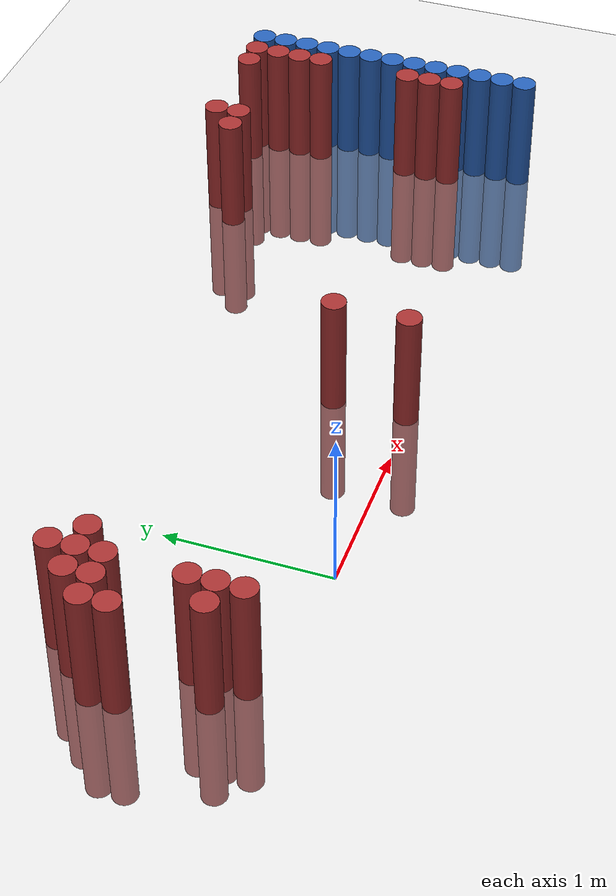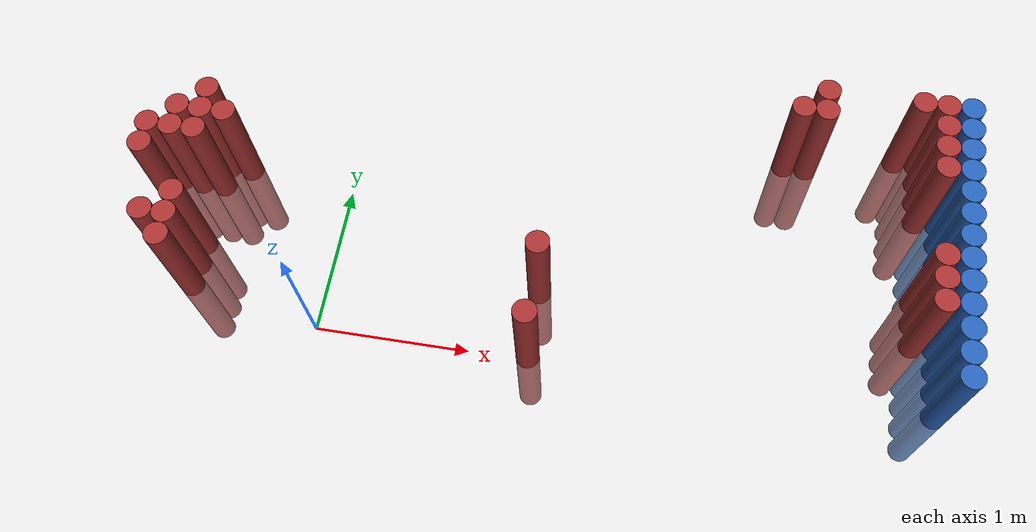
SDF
<sdf version="1.6">
 <world name="default">
  <model name="ground_plane">
   <static>1</static>
   <link name="link">
    <collision name="collision">
     <geometry><plane><normal>0 0 1</normal><size>100 100</size></plane></geometry>
     <surface><friction><ode><mu>100</mu><mu2>50</mu2></ode></friction></surface>
    </collision>
    <visual name="visual">
     <cast_shadows>0</cast_shadows>
     <geometry><plane><normal>0 0 1</normal><size>100 100</size></plane></geometry>
     <material>
      <script><uri>file://media/materials/scripts/gazebo.material</uri><name>Gazebo/Grey</name></script>
     </material>
    </visual>
   </link>
  </model>
  <model name="unit_cylinder_116">
   <static>1</static>
   <pose>3.925000 0.175000 0.000000 0.000000 0.000000 0.000000</pose>
   <link name="link">
    <inertial>
     <mass>1</mass>
     <inertia><ixx>0.145833</ixx><ixy>0</ixy><ixz>0</ixz><iyy>0.145833</iyy><iyz>0</iyz><izz>0.125</izz></inertia>
    </inertial>
    <collision name="collision">
     <geometry><cylinder><radius>0.075000</radius><length>1.5</length></cylinder></geometry>
    </collision>
    <visual name="visual">
     <geometry><cylinder><radius>0.075000</radius><length>1.5</length></cylinder></geometry>
     <material>
      <ambient>0.152000 0.379000 0.720000 1</ambient>
      <diffuse>0.152000 0.379000 0.720000 1</diffuse>
     </material>
     <material>
      <script><name>Gazebo/Grey</name><uri>file://media/materials/scripts/gazebo.material</uri></script>
     </material>
    </visual>
   </link>
  </model>
  <model name="unit_cylinder_118">
   <static>1</static>
   <pose>3.925000 0.325000 0.000000 0.000000 0.000000 0.000000</pose>
   <link name="link">
    <inertial>
     <mass>1</mass>
     <inertia><ixx>0.145833</ixx><ixy>0</ixy><ixz>0</ixz><iyy>0.145833</iyy><iyz>0</iyz><izz>0.125</izz></inertia>
    </inertial>
    <collision name="collision">
     <geometry><cylinder><radius>0.075000</radius><length>1.5</length></cylinder></geometry>
    </collision>
    <visual name="visual">
     <geometry><cylinder><radius>0.075000</radius><length>1.5</length></cylinder></geometry>
     <material>
      <ambient>0.152000 0.379000 0.720000 1</ambient>
      <diffuse>0.152000 0.379000 0.720000 1</diffuse>
     </material>
     <material>
      <script><name>Gazebo/Grey</name><uri>file://media/materials/scripts/gazebo.material</uri></script>
     </material>
    </visual>
   </link>
  </model>
  <model name="unit_cylinder_120">
   <static>1</static>
   <pose>3.925000 0.475000 0.000000 0.000000 0.000000 0.000000</pose>
   <link name="link">
    <inertial>
     <mass>1</mass>
     <inertia><ixx>0.145833</ixx><ixy>0</ixy><ixz>0</ixz><iyy>0.145833</iyy><iyz>0</iyz><izz>0.125</izz></inertia>
    </inertial>
    <collision name="collision">
     <geometry><cylinder><radius>0.075000</radius><length>1.5</length></cylinder></geometry>
    </collision>
    <visual name="visual">
     <geometry><cylinder><radius>0.075000</radius><length>1.5</length></cylinder></geometry>
     <material>
      <ambient>0.152000 0.379000 0.720000 1</ambient>
      <diffuse>0.152000 0.379000 0.720000 1</diffuse>
     </material>
     <material>
      <script><name>Gazebo/Grey</name><uri>file://media/materials/scripts/gazebo.material</uri></script>
     </material>
    </visual>
   </link>
  </model>
  <model name="unit_cylinder_122">
   <static>1</static>
   <pose>3.925000 0.625000 0.000000 0.000000 0.000000 0.000000</pose>
   <link name="link">
    <inertial>
     <mass>1</mass>
     <inertia><ixx>0.145833</ixx><ixy>0</ixy><ixz>0</ixz><iyy>0.145833</iyy><iyz>0</iyz><izz>0.125</izz></inertia>
    </inertial>
    <collision name="collision">
     <geometry><cylinder><radius>0.075000</radius><length>1.5</length></cylinder></geometry>
    </collision>
    <visual name="visual">
     <geometry><cylinder><radius>0.075000</radius><length>1.5</length></cylinder></geometry>
     <material>
      <ambient>0.152000 0.379000 0.720000 1</ambient>
      <diffuse>0.152000 0.379000 0.720000 1</diffuse>
     </material>
     <material>
      <script><name>Gazebo/Grey</name><uri>file://media/materials/scripts/gazebo.material</uri></script>
     </material>
    </visual>
   </link>
  </model>
  <model name="unit_cylinder_124">
   <static>1</static>
   <pose>3.925000 0.775000 0.000000 0.000000 0.000000 0.000000</pose>
   <link name="link">
    <inertial>
     <mass>1</mass>
     <inertia><ixx>0.145833</ixx><ixy>0</ixy><ixz>0</ixz><iyy>0.145833</iyy><iyz>0</iyz><izz>0.125</izz></inertia>
    </inertial>
    <collision name="collision">
     <geometry><cylinder><radius>0.075000</radius><length>1.5</length></cylinder></geometry>
    </collision>
    <visual name="visual">
     <geometry><cylinder><radius>0.075000</radius><length>1.5</length></cylinder></geometry>
     <material>
      <ambient>0.152000 0.379000 0.720000 1</ambient>
      <diffuse>0.152000 0.379000 0.720000 1</diffuse>
     </material>
     <material>
      <script><name>Gazebo/Grey</name><uri>file://media/materials/scripts/gazebo.material</uri></script>
     </material>
    </visual>
   </link>
  </model>
  <model name="unit_cylinder_126">
   <static>1</static>
   <pose>3.925000 0.925000 0.000000 0.000000 0.000000 0.000000</pose>
   <link name="link">
    <inertial>
     <mass>1</mass>
     <inertia><ixx>0.145833</ixx><ixy>0</ixy><ixz>0</ixz><iyy>0.145833</iyy><iyz>0</iyz><izz>0.125</izz></inertia>
    </inertial>
    <collision name="collision">
     <geometry><cylinder><radius>0.075000</radius><length>1.5</length></cylinder></geometry>
    </collision>
    <visual name="visual">
     <geometry><cylinder><radius>0.075000</radius><length>1.5</length></cylinder></geometry>
     <material>
      <ambient>0.152000 0.379000 0.720000 1</ambient>
      <diffuse>0.152000 0.379000 0.720000 1</diffuse>
     </material>
     <material>
      <script><name>Gazebo/Grey</name><uri>file://media/materials/scripts/gazebo.material</uri></script>
     </material>
    </visual>
   </link>
  </model>
  <model name="unit_cylinder_128">
   <static>1</static>
   <pose>3.925000 1.075000 0.000000 0.000000 0.000000 0.000000</pose>
   <link name="link">
    <inertial>
     <mass>1</mass>
     <inertia><ixx>0.145833</ixx><ixy>0</ixy><ixz>0</ixz><iyy>0.145833</iyy><iyz>0</iyz><izz>0.125</izz></inertia>
    </inertial>
    <collision name="collision">
     <geometry><cylinder><radius>0.075000</radius><length>1.5</length></cylinder></geometry>
    </collision>
    <visual name="visual">
     <geometry><cylinder><radius>0.075000</radius><length>1.5</length></cylinder></geometry>
     <material>
      <ambient>0.152000 0.379000 0.720000 1</ambient>
      <diffuse>0.152000 0.379000 0.720000 1</diffuse>
     </material>
     <material>
      <script><name>Gazebo/Grey</name><uri>file://media/materials/scripts/gazebo.material</uri></script>
     </material>
    </visual>
   </link>
  </model>
  <model name="unit_cylinder_130">
   <static>1</static>
   <pose>3.925000 1.225000 0.000000 0.000000 0.000000 0.000000</pose>
   <link name="link">
    <inertial>
     <mass>1</mass>
     <inertia><ixx>0.145833</ixx><ixy>0</ixy><ixz>0</ixz><iyy>0.145833</iyy><iyz>0</iyz><izz>0.125</izz></inertia>
    </inertial>
    <collision name="collision">
     <geometry><cylinder><radius>0.075000</radius><length>1.5</length></cylinder></geometry>
    </collision>
    <visual name="visual">
     <geometry><cylinder><radius>0.075000</radius><length>1.5</length></cylinder></geometry>
     <material>
      <ambient>0.152000 0.379000 0.720000 1</ambient>
      <diffuse>0.152000 0.379000 0.720000 1</diffuse>
     </material>
     <material>
      <script><name>Gazebo/Grey</name><uri>file://media/materials/scripts/gazebo.material</uri></script>
     </material>
    </visual>
   </link>
  </model>
  <model name="unit_cylinder_132">
   <static>1</static>
   <pose>3.925000 1.375000 0.000000 0.000000 0.000000 0.000000</pose>
   <link name="link">
    <inertial>
     <mass>1</mass>
     <inertia><ixx>0.145833</ixx><ixy>0</ixy><ixz>0</ixz><iyy>0.145833</iyy><iyz>0</iyz><izz>0.125</izz></inertia>
    </inertial>
    <collision name="collision">
     <geometry><cylinder><radius>0.075000</radius><length>1.5</length></cylinder></geometry>
    </collision>
    <visual name="visual">
     <geometry><cylinder><radius>0.075000</radius><length>1.5</length></cylinder></geometry>
     <material>
      <ambient>0.152000 0.379000 0.720000 1</ambient>
      <diffuse>0.152000 0.379000 0.720000 1</diffuse>
     </material>
     <material>
      <script><name>Gazebo/Grey</name><uri>file://media/materials/scripts/gazebo.material</uri></script>
     </material>
    </visual>
   </link>
  </model>
  <model name="unit_cylinder_134">
   <static>1</static>
   <pose>3.925000 1.525000 0.000000 0.000000 0.000000 0.000000</pose>
   <link name="link">
    <inertial>
     <mass>1</mass>
     <inertia><ixx>0.145833</ixx><ixy>0</ixy><ixz>0</ixz><iyy>0.145833</iyy><iyz>0</iyz><izz>0.125</izz></inertia>
    </inertial>
    <collision name="collision">
     <geometry><cylinder><radius>0.075000</radius><length>1.5</length></cylinder></geometry>
    </collision>
    <visual name="visual">
     <geometry><cylinder><radius>0.075000</radius><length>1.5</length></cylinder></geometry>
     <material>
      <ambient>0.152000 0.379000 0.720000 1</ambient>
      <diffuse>0.152000 0.379000 0.720000 1</diffuse>
     </material>
     <material>
      <script><name>Gazebo/Grey</name><uri>file://media/materials/scripts/gazebo.material</uri></script>
     </material>
    </visual>
   </link>
  </model>
  <model name="unit_cylinder_136">
   <static>1</static>
   <pose>3.925000 1.675000 0.000000 0.000000 0.000000 0.000000</pose>
   <link name="link">
    <inertial>
     <mass>1</mass>
     <inertia><ixx>0.145833</ixx><ixy>0</ixy><ixz>0</ixz><iyy>0.145833</iyy><iyz>0</iyz><izz>0.125</izz></inertia>
    </inertial>
    <collision name="collision">
     <geometry><cylinder><radius>0.075000</radius><length>1.5</length></cylinder></geometry>
    </collision>
    <visual name="visual">
     <geometry><cylinder><radius>0.075000</radius><length>1.5</length></cylinder></geometry>
     <material>
      <ambient>0.152000 0.379000 0.720000 1</ambient>
      <diffuse>0.152000 0.379000 0.720000 1</diffuse>
     </material>
     <material>
      <script><name>Gazebo/Grey</name><uri>file://media/materials/scripts/gazebo.material</uri></script>
     </material>
    </visual>
   </link>
  </model>
  <model name="unit_cylinder_138">
   <static>1</static>
   <pose>3.925000 1.825000 0.000000 0.000000 0.000000 0.000000</pose>
   <link name="link">
    <inertial>
     <mass>1</mass>
     <inertia><ixx>0.145833</ixx><ixy>0</ixy><ixz>0</ixz><iyy>0.145833</iyy><iyz>0</iyz><izz>0.125</izz></inertia>
    </inertial>
    <collision name="collision">
     <geometry><cylinder><radius>0.075000</radius><length>1.5</length></cylinder></geometry>
    </collision>
    <visual name="visual">
     <geometry><cylinder><radius>0.075000</radius><length>1.5</length></cylinder></geometry>
     <material>
      <ambient>0.152000 0.379000 0.720000 1</ambient>
      <diffuse>0.152000 0.379000 0.720000 1</diffuse>
     </material>
     <material>
      <script><name>Gazebo/Grey</name><uri>file://media/materials/scripts/gazebo.material</uri></script>
     </material>
    </visual>
   </link>
  </model>
  <model name="unit_cylinder_296">
   <static>1</static>
   <pose>-1.175000 0.775000 0.000000 0.000000 0.000000 0.000000</pose>
   <link name="link">
    <inertial>
     <mass>1</mass>
     <inertia><ixx>0.145833</ixx><ixy>0</ixy><ixz>0</ixz><iyy>0.145833</iyy><iyz>0</iyz><izz>0.125</izz></inertia>
    </inertial>
    <collision name="collision">
     <geometry><cylinder><radius>0.075000</radius><length>1.5</length></cylinder></geometry>
    </collision>
    <visual name="visual">
     <geometry><cylinder><radius>0.075000</radius><length>1.5</length></cylinder></geometry>
     <material>
      <ambient>0.648000 0.192000 0.192000 1</ambient>
      <diffuse>0.648000 0.192000 0.192000 1</diffuse>
     </material>
     <material>
      <script><name>Gazebo/Grey</name><uri>file://media/materials/scripts/gazebo.material</uri></script>
     </material>
    </visual>
   </link>
  </model>
  <model name="unit_cylinder_297">
   <static>1</static>
   <pose>-1.175000 0.925000 0.000000 0.000000 0.000000 0.000000</pose>
   <link name="link">
    <inertial>
     <mass>1</mass>
     <inertia><ixx>0.145833</ixx><ixy>0</ixy><ixz>0</ixz><iyy>0.145833</iyy><iyz>0</iyz><izz>0.125</izz></inertia>
    </inertial>
    <collision name="collision">
     <geometry><cylinder><radius>0.075000</radius><length>1.5</length></cylinder></geometry>
    </collision>
    <visual name="visual">
     <geometry><cylinder><radius>0.075000</radius><length>1.5</length></cylinder></geometry>
     <material>
      <ambient>0.648000 0.192000 0.192000 1</ambient>
      <diffuse>0.648000 0.192000 0.192000 1</diffuse>
     </material>
     <material>
      <script><name>Gazebo/Grey</name><uri>file://media/materials/scripts/gazebo.material</uri></script>
     </material>
    </visual>
   </link>
  </model>
  <model name="unit_cylinder_298">
   <static>1</static>
   <pose>-1.025000 0.325000 0.000000 0.000000 0.000000 0.000000</pose>
   <link name="link">
    <inertial>
     <mass>1</mass>
     <inertia><ixx>0.145833</ixx><ixy>0</ixy><ixz>0</ixz><iyy>0.145833</iyy><iyz>0</iyz><izz>0.125</izz></inertia>
    </inertial>
    <collision name="collision">
     <geometry><cylinder><radius>0.075000</radius><length>1.5</length></cylinder></geometry>
    </collision>
    <visual name="visual">
     <geometry><cylinder><radius>0.075000</radius><length>1.5</length></cylinder></geometry>
     <material>
      <ambient>0.648000 0.192000 0.192000 1</ambient>
      <diffuse>0.648000 0.192000 0.192000 1</diffuse>
     </material>
     <material>
      <script><name>Gazebo/Grey</name><uri>file://media/materials/scripts/gazebo.material</uri></script>
     </material>
    </visual>
   </link>
  </model>
  <model name="unit_cylinder_299">
   <static>1</static>
   <pose>-1.025000 0.925000 0.000000 0.000000 0.000000 0.000000</pose>
   <link name="link">
    <inertial>
     <mass>1</mass>
     <inertia><ixx>0.145833</ixx><ixy>0</ixy><ixz>0</ixz><iyy>0.145833</iyy><iyz>0</iyz><izz>0.125</izz></inertia>
    </inertial>
    <collision name="collision">
     <geometry><cylinder><radius>0.075000</radius><length>1.5</length></cylinder></geometry>
    </collision>
    <visual name="visual">
     <geometry><cylinder><radius>0.075000</radius><length>1.5</length></cylinder></geometry>
     <material>
      <ambient>0.648000 0.192000 0.192000 1</ambient>
      <diffuse>0.648000 0.192000 0.192000 1</diffuse>
     </material>
     <material>
      <script><name>Gazebo/Grey</name><uri>file://media/materials/scripts/gazebo.material</uri></script>
     </material>
    </visual>
   </link>
  </model>
  <model name="unit_cylinder_300">
   <static>1</static>
   <pose>-1.025000 1.075000 0.000000 0.000000 0.000000 0.000000</pose>
   <link name="link">
    <inertial>
     <mass>1</mass>
     <inertia><ixx>0.145833</ixx><ixy>0</ixy><ixz>0</ixz><iyy>0.145833</iyy><iyz>0</iyz><izz>0.125</izz></inertia>
    </inertial>
    <collision name="collision">
     <geometry><cylinder><radius>0.075000</radius><length>1.5</length></cylinder></geometry>
    </collision>
    <visual name="visual">
     <geometry><cylinder><radius>0.075000</radius><length>1.5</length></cylinder></geometry>
     <material>
      <ambient>0.648000 0.192000 0.192000 1</ambient>
      <diffuse>0.648000 0.192000 0.192000 1</diffuse>
     </material>
     <material>
      <script><name>Gazebo/Grey</name><uri>file://media/materials/scripts/gazebo.material</uri></script>
     </material>
    </visual>
   </link>
  </model>
  <model name="unit_cylinder_301">
   <static>1</static>
   <pose>-0.875000 0.175000 0.000000 0.000000 0.000000 0.000000</pose>
   <link name="link">
    <inertial>
     <mass>1</mass>
     <inertia><ixx>0.145833</ixx><ixy>0</ixy><ixz>0</ixz><iyy>0.145833</iyy><iyz>0</iyz><izz>0.125</izz></inertia>
    </inertial>
    <collision name="collision">
     <geometry><cylinder><radius>0.075000</radius><length>1.5</length></cylinder></geometry>
    </collision>
    <visual name="visual">
     <geometry><cylinder><radius>0.075000</radius><length>1.5</length></cylinder></geometry>
     <material>
      <ambient>0.648000 0.192000 0.192000 1</ambient>
      <diffuse>0.648000 0.192000 0.192000 1</diffuse>
     </material>
     <material>
      <script><name>Gazebo/Grey</name><uri>file://media/materials/scripts/gazebo.material</uri></script>
     </material>
    </visual>
   </link>
  </model>
  <model name="unit_cylinder_302">
   <static>1</static>
   <pose>-0.875000 0.325000 0.000000 0.000000 0.000000 0.000000</pose>
   <link name="link">
    <inertial>
     <mass>1</mass>
     <inertia><ixx>0.145833</ixx><ixy>0</ixy><ixz>0</ixz><iyy>0.145833</iyy><iyz>0</iyz><izz>0.125</izz></inertia>
    </inertial>
    <collision name="collision">
     <geometry><cylinder><radius>0.075000</radius><length>1.5</length></cylinder></geometry>
    </collision>
    <visual name="visual">
     <geometry><cylinder><radius>0.075000</radius><length>1.5</length></cylinder></geometry>
     <material>
      <ambient>0.648000 0.192000 0.192000 1</ambient>
      <diffuse>0.648000 0.192000 0.192000 1</diffuse>
     </material>
     <material>
      <script><name>Gazebo/Grey</name><uri>file://media/materials/scripts/gazebo.material</uri></script>
     </material>
    </visual>
   </link>
  </model>
  <model name="unit_cylinder_303">
   <static>1</static>
   <pose>-0.875000 0.475000 0.000000 0.000000 0.000000 0.000000</pose>
   <link name="link">
    <inertial>
     <mass>1</mass>
     <inertia><ixx>0.145833</ixx><ixy>0</ixy><ixz>0</ixz><iyy>0.145833</iyy><iyz>0</iyz><izz>0.125</izz></inertia>
    </inertial>
    <collision name="collision">
     <geometry><cylinder><radius>0.075000</radius><length>1.5</length></cylinder></geometry>
    </collision>
    <visual name="visual">
     <geometry><cylinder><radius>0.075000</radius><length>1.5</length></cylinder></geometry>
     <material>
      <ambient>0.648000 0.192000 0.192000 1</ambient>
      <diffuse>0.648000 0.192000 0.192000 1</diffuse>
     </material>
     <material>
      <script><name>Gazebo/Grey</name><uri>file://media/materials/scripts/gazebo.material</uri></script>
     </material>
    </visual>
   </link>
  </model>
  <model name="unit_cylinder_304">
   <static>1</static>
   <pose>-0.875000 0.925000 0.000000 0.000000 0.000000 0.000000</pose>
   <link name="link">
    <inertial>
     <mass>1</mass>
     <inertia><ixx>0.145833</ixx><ixy>0</ixy><ixz>0</ixz><iyy>0.145833</iyy><iyz>0</iyz><izz>0.125</izz></inertia>
    </inertial>
    <collision name="collision">
     <geometry><cylinder><radius>0.075000</radius><length>1.5</length></cylinder></geometry>
    </collision>
    <visual name="visual">
     <geometry><cylinder><radius>0.075000</radius><length>1.5</length></cylinder></geometry>
     <material>
      <ambient>0.648000 0.192000 0.192000 1</ambient>
      <diffuse>0.648000 0.192000 0.192000 1</diffuse>
     </material>
     <material>
      <script><name>Gazebo/Grey</name><uri>file://media/materials/scripts/gazebo.material</uri></script>
     </material>
    </visual>
   </link>
  </model>
  <model name="unit_cylinder_305">
   <static>1</static>
   <pose>-0.875000 1.075000 0.000000 0.000000 0.000000 0.000000</pose>
   <link name="link">
    <inertial>
     <mass>1</mass>
     <inertia><ixx>0.145833</ixx><ixy>0</ixy><ixz>0</ixz><iyy>0.145833</iyy><iyz>0</iyz><izz>0.125</izz></inertia>
    </inertial>
    <collision name="collision">
     <geometry><cylinder><radius>0.075000</radius><length>1.5</length></cylinder></geometry>
    </collision>
    <visual name="visual">
     <geometry><cylinder><radius>0.075000</radius><length>1.5</length></cylinder></geometry>
     <material>
      <ambient>0.648000 0.192000 0.192000 1</ambient>
      <diffuse>0.648000 0.192000 0.192000 1</diffuse>
     </material>
     <material>
      <script><name>Gazebo/Grey</name><uri>file://media/materials/scripts/gazebo.material</uri></script>
     </material>
    </visual>
   </link>
  </model>
  <model name="unit_cylinder_306">
   <static>1</static>
   <pose>-0.875000 1.225000 0.000000 0.000000 0.000000 0.000000</pose>
   <link name="link">
    <inertial>
     <mass>1</mass>
     <inertia><ixx>0.145833</ixx><ixy>0</ixy><ixz>0</ixz><iyy>0.145833</iyy><iyz>0</iyz><izz>0.125</izz></inertia>
    </inertial>
    <collision name="collision">
     <geometry><cylinder><radius>0.075000</radius><length>1.5</length></cylinder></geometry>
    </collision>
    <visual name="visual">
     <geometry><cylinder><radius>0.075000</radius><length>1.5</length></cylinder></geometry>
     <material>
      <ambient>0.648000 0.192000 0.192000 1</ambient>
      <diffuse>0.648000 0.192000 0.192000 1</diffuse>
     </material>
     <material>
      <script><name>Gazebo/Grey</name><uri>file://media/materials/scripts/gazebo.material</uri></script>
     </material>
    </visual>
   </link>
  </model>
  <model name="unit_cylinder_309">
   <static>1</static>
   <pose>-0.725000 1.075000 0.000000 0.000000 0.000000 0.000000</pose>
   <link name="link">
    <inertial>
     <mass>1</mass>
     <inertia><ixx>0.145833</ixx><ixy>0</ixy><ixz>0</ixz><iyy>0.145833</iyy><iyz>0</iyz><izz>0.125</izz></inertia>
    </inertial>
    <collision name="collision">
     <geometry><cylinder><radius>0.075000</radius><length>1.5</length></cylinder></geometry>
    </collision>
    <visual name="visual">
     <geometry><cylinder><radius>0.075000</radius><length>1.5</length></cylinder></geometry>
     <material>
      <ambient>0.648000 0.192000 0.192000 1</ambient>
      <diffuse>0.648000 0.192000 0.192000 1</diffuse>
     </material>
     <material>
      <script><name>Gazebo/Grey</name><uri>file://media/materials/scripts/gazebo.material</uri></script>
     </material>
    </visual>
   </link>
  </model>
  <model name="unit_cylinder_341">
   <static>1</static>
   <pose>1.375000 0.025000 0.000000 0.000000 0.000000 0.000000</pose>
   <link name="link">
    <inertial>
     <mass>1</mass>
     <inertia><ixx>0.145833</ixx><ixy>0</ixy><ixz>0</ixz><iyy>0.145833</iyy><iyz>0</iyz><izz>0.125</izz></inertia>
    </inertial>
    <collision name="collision">
     <geometry><cylinder><radius>0.075000</radius><length>1.5</length></cylinder></geometry>
    </collision>
    <visual name="visual">
     <geometry><cylinder><radius>0.075000</radius><length>1.5</length></cylinder></geometry>
     <material>
      <ambient>0.648000 0.192000 0.192000 1</ambient>
      <diffuse>0.648000 0.192000 0.192000 1</diffuse>
     </material>
     <material>
      <script><name>Gazebo/Grey</name><uri>file://media/materials/scripts/gazebo.material</uri></script>
     </material>
    </visual>
   </link>
  </model>
  <model name="unit_cylinder_342">
   <static>1</static>
   <pose>1.375000 0.475000 0.000000 0.000000 0.000000 0.000000</pose>
   <link name="link">
    <inertial>
     <mass>1</mass>
     <inertia><ixx>0.145833</ixx><ixy>0</ixy><ixz>0</ixz><iyy>0.145833</iyy><iyz>0</iyz><izz>0.125</izz></inertia>
    </inertial>
    <collision name="collision">
     <geometry><cylinder><radius>0.075000</radius><length>1.5</length></cylinder></geometry>
    </collision>
    <visual name="visual">
     <geometry><cylinder><radius>0.075000</radius><length>1.5</length></cylinder></geometry>
     <material>
      <ambient>0.648000 0.192000 0.192000 1</ambient>
      <diffuse>0.648000 0.192000 0.192000 1</diffuse>
     </material>
     <material>
      <script><name>Gazebo/Grey</name><uri>file://media/materials/scripts/gazebo.material</uri></script>
     </material>
    </visual>
   </link>
  </model>
  <model name="unit_cylinder_348">
   <static>1</static>
   <pose>2.875000 1.675000 0.000000 0.000000 0.000000 0.000000</pose>
   <link name="link">
    <inertial>
     <mass>1</mass>
     <inertia><ixx>0.145833</ixx><ixy>0</ixy><ixz>0</ixz><iyy>0.145833</iyy><iyz>0</iyz><izz>0.125</izz></inertia>
    </inertial>
    <collision name="collision">
     <geometry><cylinder><radius>0.075000</radius><length>1.5</length></cylinder></geometry>
    </collision>
    <visual name="visual">
     <geometry><cylinder><radius>0.075000</radius><length>1.5</length></cylinder></geometry>
     <material>
      <ambient>0.648000 0.192000 0.192000 1</ambient>
      <diffuse>0.648000 0.192000 0.192000 1</diffuse>
     </material>
     <material>
      <script><name>Gazebo/Grey</name><uri>file://media/materials/scripts/gazebo.material</uri></script>
     </material>
    </visual>
   </link>
  </model>
  <model name="unit_cylinder_349">
   <static>1</static>
   <pose>3.025000 1.675000 0.000000 0.000000 0.000000 0.000000</pose>
   <link name="link">
    <inertial>
     <mass>1</mass>
     <inertia><ixx>0.145833</ixx><ixy>0</ixy><ixz>0</ixz><iyy>0.145833</iyy><iyz>0</iyz><izz>0.125</izz></inertia>
    </inertial>
    <collision name="collision">
     <geometry><cylinder><radius>0.075000</radius><length>1.5</length></cylinder></geometry>
    </collision>
    <visual name="visual">
     <geometry><cylinder><radius>0.075000</radius><length>1.5</length></cylinder></geometry>
     <material>
      <ambient>0.648000 0.192000 0.192000 1</ambient>
      <diffuse>0.648000 0.192000 0.192000 1</diffuse>
     </material>
     <material>
      <script><name>Gazebo/Grey</name><uri>file://media/materials/scripts/gazebo.material</uri></script>
     </material>
    </visual>
   </link>
  </model>
  <model name="unit_cylinder_350">
   <static>1</static>
   <pose>3.025000 1.825000 0.000000 0.000000 0.000000 0.000000</pose>
   <link name="link">
    <inertial>
     <mass>1</mass>
     <inertia><ixx>0.145833</ixx><ixy>0</ixy><ixz>0</ixz><iyy>0.145833</iyy><iyz>0</iyz><izz>0.125</izz></inertia>
    </inertial>
    <collision name="collision">
     <geometry><cylinder><radius>0.075000</radius><length>1.5</length></cylinder></geometry>
    </collision>
    <visual name="visual">
     <geometry><cylinder><radius>0.075000</radius><length>1.5</length></cylinder></geometry>
     <material>
      <ambient>0.648000 0.192000 0.192000 1</ambient>
      <diffuse>0.648000 0.192000 0.192000 1</diffuse>
     </material>
     <material>
      <script><name>Gazebo/Grey</name><uri>file://media/materials/scripts/gazebo.material</uri></script>
     </material>
    </visual>
   </link>
  </model>
  <model name="unit_cylinder_358">
   <static>1</static>
   <pose>3.625000 1.825000 0.000000 0.000000 0.000000 0.000000</pose>
   <link name="link">
    <inertial>
     <mass>1</mass>
     <inertia><ixx>0.145833</ixx><ixy>0</ixy><ixz>0</ixz><iyy>0.145833</iyy><iyz>0</iyz><izz>0.125</izz></inertia>
    </inertial>
    <collision name="collision">
     <geometry><cylinder><radius>0.075000</radius><length>1.5</length></cylinder></geometry>
    </collision>
    <visual name="visual">
     <geometry><cylinder><radius>0.075000</radius><length>1.5</length></cylinder></geometry>
     <material>
      <ambient>0.648000 0.192000 0.192000 1</ambient>
      <diffuse>0.648000 0.192000 0.192000 1</diffuse>
     </material>
     <material>
      <script><name>Gazebo/Grey</name><uri>file://media/materials/scripts/gazebo.material</uri></script>
     </material>
    </visual>
   </link>
  </model>
  <model name="unit_cylinder_372">
   <static>1</static>
   <pose>3.775000 0.475000 0.000000 0.000000 0.000000 0.000000</pose>
   <link name="link">
    <inertial>
     <mass>1</mass>
     <inertia><ixx>0.145833</ixx><ixy>0</ixy><ixz>0</ixz><iyy>0.145833</iyy><iyz>0</iyz><izz>0.125</izz></inertia>
    </inertial>
    <collision name="collision">
     <geometry><cylinder><radius>0.075000</radius><length>1.5</length></cylinder></geometry>
    </collision>
    <visual name="visual">
     <geometry><cylinder><radius>0.075000</radius><length>1.5</length></cylinder></geometry>
     <material>
      <ambient>0.648000 0.192000 0.192000 1</ambient>
      <diffuse>0.648000 0.192000 0.192000 1</diffuse>
     </material>
     <material>
      <script><name>Gazebo/Grey</name><uri>file://media/materials/scripts/gazebo.material</uri></script>
     </material>
    </visual>
   </link>
  </model>
  <model name="unit_cylinder_373">
   <static>1</static>
   <pose>3.775000 0.625000 0.000000 0.000000 0.000000 0.000000</pose>
   <link name="link">
    <inertial>
     <mass>1</mass>
     <inertia><ixx>0.145833</ixx><ixy>0</ixy><ixz>0</ixz><iyy>0.145833</iyy><iyz>0</iyz><izz>0.125</izz></inertia>
    </inertial>
    <collision name="collision">
     <geometry><cylinder><radius>0.075000</radius><length>1.5</length></cylinder></geometry>
    </collision>
    <visual name="visual">
     <geometry><cylinder><radius>0.075000</radius><length>1.5</length></cylinder></geometry>
     <material>
      <ambient>0.648000 0.192000 0.192000 1</ambient>
      <diffuse>0.648000 0.192000 0.192000 1</diffuse>
     </material>
     <material>
      <script><name>Gazebo/Grey</name><uri>file://media/materials/scripts/gazebo.material</uri></script>
     </material>
    </visual>
   </link>
  </model>
  <model name="unit_cylinder_374">
   <static>1</static>
   <pose>3.775000 0.775000 0.000000 0.000000 0.000000 0.000000</pose>
   <link name="link">
    <inertial>
     <mass>1</mass>
     <inertia><ixx>0.145833</ixx><ixy>0</ixy><ixz>0</ixz><iyy>0.145833</iyy><iyz>0</iyz><izz>0.125</izz></inertia>
    </inertial>
    <collision name="collision">
     <geometry><cylinder><radius>0.075000</radius><length>1.5</length></cylinder></geometry>
    </collision>
    <visual name="visual">
     <geometry><cylinder><radius>0.075000</radius><length>1.5</length></cylinder></geometry>
     <material>
      <ambient>0.648000 0.192000 0.192000 1</ambient>
      <diffuse>0.648000 0.192000 0.192000 1</diffuse>
     </material>
     <material>
      <script><name>Gazebo/Grey</name><uri>file://media/materials/scripts/gazebo.material</uri></script>
     </material>
    </visual>
   </link>
  </model>
  <model name="unit_cylinder_375">
   <static>1</static>
   <pose>3.775000 1.375000 0.000000 0.000000 0.000000 0.000000</pose>
   <link name="link">
    <inertial>
     <mass>1</mass>
     <inertia><ixx>0.145833</ixx><ixy>0</ixy><ixz>0</ixz><iyy>0.145833</iyy><iyz>0</iyz><izz>0.125</izz></inertia>
    </inertial>
    <collision name="collision">
     <geometry><cylinder><radius>0.075000</radius><length>1.5</length></cylinder></geometry>
    </collision>
    <visual name="visual">
     <geometry><cylinder><radius>0.075000</radius><length>1.5</length></cylinder></geometry>
     <material>
      <ambient>0.648000 0.192000 0.192000 1</ambient>
      <diffuse>0.648000 0.192000 0.192000 1</diffuse>
     </material>
     <material>
      <script><name>Gazebo/Grey</name><uri>file://media/materials/scripts/gazebo.material</uri></script>
     </material>
    </visual>
   </link>
  </model>
  <model name="unit_cylinder_376">
   <static>1</static>
   <pose>3.775000 1.525000 0.000000 0.000000 0.000000 0.000000</pose>
   <link name="link">
    <inertial>
     <mass>1</mass>
     <inertia><ixx>0.145833</ixx><ixy>0</ixy><ixz>0</ixz><iyy>0.145833</iyy><iyz>0</iyz><izz>0.125</izz></inertia>
    </inertial>
    <collision name="collision">
     <geometry><cylinder><radius>0.075000</radius><length>1.5</length></cylinder></geometry>
    </collision>
    <visual name="visual">
     <geometry><cylinder><radius>0.075000</radius><length>1.5</length></cylinder></geometry>
     <material>
      <ambient>0.648000 0.192000 0.192000 1</ambient>
      <diffuse>0.648000 0.192000 0.192000 1</diffuse>
     </material>
     <material>
      <script><name>Gazebo/Grey</name><uri>file://media/materials/scripts/gazebo.material</uri></script>
     </material>
    </visual>
   </link>
  </model>
  <model name="unit_cylinder_377">
   <static>1</static>
   <pose>3.775000 1.675000 0.000000 0.000000 0.000000 0.000000</pose>
   <link name="link">
    <inertial>
     <mass>1</mass>
     <inertia><ixx>0.145833</ixx><ixy>0</ixy><ixz>0</ixz><iyy>0.145833</iyy><iyz>0</iyz><izz>0.125</izz></inertia>
    </inertial>
    <collision name="collision">
     <geometry><cylinder><radius>0.075000</radius><length>1.5</length></cylinder></geometry>
    </collision>
    <visual name="visual">
     <geometry><cylinder><radius>0.075000</radius><length>1.5</length></cylinder></geometry>
     <material>
      <ambient>0.648000 0.192000 0.192000 1</ambient>
      <diffuse>0.648000 0.192000 0.192000 1</diffuse>
     </material>
     <material>
      <script><name>Gazebo/Grey</name><uri>file://media/materials/scripts/gazebo.material</uri></script>
     </material>
    </visual>
   </link>
  </model>
  <model name="unit_cylinder_378">
   <static>1</static>
   <pose>3.775000 1.825000 0.000000 0.000000 0.000000 0.000000</pose>
   <link name="link">
    <inertial>
     <mass>1</mass>
     <inertia><ixx>0.145833</ixx><ixy>0</ixy><ixz>0</ixz><iyy>0.145833</iyy><iyz>0</iyz><izz>0.125</izz></inertia>
    </inertial>
    <collision name="collision">
     <geometry><cylinder><radius>0.075000</radius><length>1.5</length></cylinder></geometry>
    </collision>
    <visual name="visual">
     <geometry><cylinder><radius>0.075000</radius><length>1.5</length></cylinder></geometry>
     <material>
      <ambient>0.648000 0.192000 0.192000 1</ambient>
      <diffuse>0.648000 0.192000 0.192000 1</diffuse>
     </material>
     <material>
      <script><name>Gazebo/Grey</name><uri>file://media/materials/scripts/gazebo.material</uri></script>
     </material>
    </visual>
   </link>
  </model>
  <model name="unit_cylinder_402">
   <static>1</static>
   <pose>3.925000 0.025000 0.000000 0.000000 0.000000 0.000000</pose>
   <link name="link">
    <inertial>
     <mass>1</mass>
     <inertia><ixx>0.145833</ixx><ixy>0</ixy><ixz>0</ixz><iyy>0.145833</iyy><iyz>0</iyz><izz>0.125</izz></inertia>
    </inertial>
    <collision name="collision">
     <geometry><cylinder><radius>0.075000</radius><length>1.5</length></cylinder></geometry>
    </collision>
    <visual name="visual">
     <geometry><cylinder><radius>0.075000</radius><length>1.5</length></cylinder></geometry>
     <material>
      <ambient>0.152000 0.379000 0.720000 1</ambient>
      <diffuse>0.152000 0.379000 0.720000 1</diffuse>
     </material>
     <material>
      <script><name>Gazebo/Grey</name><uri>file://media/materials/scripts/gazebo.material</uri></script>
     </material>
    </visual>
   </link>
  </model>
  <model name="unit_cylinder_403">
   <static>1</static>
   <pose>3.925000 0.175000 0.000000 0.000000 0.000000 0.000000</pose>
   <link name="link">
    <inertial>
     <mass>1</mass>
     <inertia><ixx>0.145833</ixx><ixy>0</ixy><ixz>0</ixz><iyy>0.145833</iyy><iyz>0</iyz><izz>0.125</izz></inertia>
    </inertial>
    <collision name="collision">
     <geometry><cylinder><radius>0.075000</radius><length>1.5</length></cylinder></geometry>
    </collision>
    <visual name="visual">
     <geometry><cylinder><radius>0.075000</radius><length>1.5</length></cylinder></geometry>
     <material>
      <ambient>0.152000 0.379000 0.720000 1</ambient>
      <diffuse>0.152000 0.379000 0.720000 1</diffuse>
     </material>
     <material>
      <script><name>Gazebo/Grey</name><uri>file://media/materials/scripts/gazebo.material</uri></script>
     </material>
    </visual>
   </link>
  </model>
  <model name="unit_cylinder_404">
   <static>1</static>
   <pose>3.925000 0.325000 0.000000 0.000000 0.000000 0.000000</pose>
   <link name="link">
    <inertial>
     <mass>1</mass>
     <inertia><ixx>0.145833</ixx><ixy>0</ixy><ixz>0</ixz><iyy>0.145833</iyy><iyz>0</iyz><izz>0.125</izz></inertia>
    </inertial>
    <collision name="collision">
     <geometry><cylinder><radius>0.075000</radius><length>1.5</length></cylinder></geometry>
    </collision>
    <visual name="visual">
     <geometry><cylinder><radius>0.075000</radius><length>1.5</length></cylinder></geometry>
     <material>
      <ambient>0.152000 0.379000 0.720000 1</ambient>
      <diffuse>0.152000 0.379000 0.720000 1</diffuse>
     </material>
     <material>
      <script><name>Gazebo/Grey</name><uri>file://media/materials/scripts/gazebo.material</uri></script>
     </material>
    </visual>
   </link>
  </model>
  <model name="unit_cylinder_405">
   <static>1</static>
   <pose>3.925000 0.475000 0.000000 0.000000 0.000000 0.000000</pose>
   <link name="link">
    <inertial>
     <mass>1</mass>
     <inertia><ixx>0.145833</ixx><ixy>0</ixy><ixz>0</ixz><iyy>0.145833</iyy><iyz>0</iyz><izz>0.125</izz></inertia>
    </inertial>
    <collision name="collision">
     <geometry><cylinder><radius>0.075000</radius><length>1.5</length></cylinder></geometry>
    </collision>
    <visual name="visual">
     <geometry><cylinder><radius>0.075000</radius><length>1.5</length></cylinder></geometry>
     <material>
      <ambient>0.152000 0.379000 0.720000 1</ambient>
      <diffuse>0.152000 0.379000 0.720000 1</diffuse>
     </material>
     <material>
      <script><name>Gazebo/Grey</name><uri>file://media/materials/scripts/gazebo.material</uri></script>
     </material>
    </visual>
   </link>
  </model>
  <model name="unit_cylinder_406">
   <static>1</static>
   <pose>3.925000 0.625000 0.000000 0.000000 0.000000 0.000000</pose>
   <link name="link">
    <inertial>
     <mass>1</mass>
     <inertia><ixx>0.145833</ixx><ixy>0</ixy><ixz>0</ixz><iyy>0.145833</iyy><iyz>0</iyz><izz>0.125</izz></inertia>
    </inertial>
    <collision name="collision">
     <geometry><cylinder><radius>0.075000</radius><length>1.5</length></cylinder></geometry>
    </collision>
    <visual name="visual">
     <geometry><cylinder><radius>0.075000</radius><length>1.5</length></cylinder></geometry>
     <material>
      <ambient>0.152000 0.379000 0.720000 1</ambient>
      <diffuse>0.152000 0.379000 0.720000 1</diffuse>
     </material>
     <material>
      <script><name>Gazebo/Grey</name><uri>file://media/materials/scripts/gazebo.material</uri></script>
     </material>
    </visual>
   </link>
  </model>
  <model name="unit_cylinder_407">
   <static>1</static>
   <pose>3.925000 0.775000 0.000000 0.000000 0.000000 0.000000</pose>
   <link name="link">
    <inertial>
     <mass>1</mass>
     <inertia><ixx>0.145833</ixx><ixy>0</ixy><ixz>0</ixz><iyy>0.145833</iyy><iyz>0</iyz><izz>0.125</izz></inertia>
    </inertial>
    <collision name="collision">
     <geometry><cylinder><radius>0.075000</radius><length>1.5</length></cylinder></geometry>
    </collision>
    <visual name="visual">
     <geometry><cylinder><radius>0.075000</radius><length>1.5</length></cylinder></geometry>
     <material>
      <ambient>0.152000 0.379000 0.720000 1</ambient>
      <diffuse>0.152000 0.379000 0.720000 1</diffuse>
     </material>
     <material>
      <script><name>Gazebo/Grey</name><uri>file://media/materials/scripts/gazebo.material</uri></script>
     </material>
    </visual>
   </link>
  </model>
  <model name="unit_cylinder_408">
   <static>1</static>
   <pose>3.925000 0.925000 0.000000 0.000000 0.000000 0.000000</pose>
   <link name="link">
    <inertial>
     <mass>1</mass>
     <inertia><ixx>0.145833</ixx><ixy>0</ixy><ixz>0</ixz><iyy>0.145833</iyy><iyz>0</iyz><izz>0.125</izz></inertia>
    </inertial>
    <collision name="collision">
     <geometry><cylinder><radius>0.075000</radius><length>1.5</length></cylinder></geometry>
    </collision>
    <visual name="visual">
     <geometry><cylinder><radius>0.075000</radius><length>1.5</length></cylinder></geometry>
     <material>
      <ambient>0.152000 0.379000 0.720000 1</ambient>
      <diffuse>0.152000 0.379000 0.720000 1</diffuse>
     </material>
     <material>
      <script><name>Gazebo/Grey</name><uri>file://media/materials/scripts/gazebo.material</uri></script>
     </material>
    </visual>
   </link>
  </model>
  <model name="unit_cylinder_409">
   <static>1</static>
   <pose>3.925000 1.075000 0.000000 0.000000 0.000000 0.000000</pose>
   <link name="link">
    <inertial>
     <mass>1</mass>
     <inertia><ixx>0.145833</ixx><ixy>0</ixy><ixz>0</ixz><iyy>0.145833</iyy><iyz>0</iyz><izz>0.125</izz></inertia>
    </inertial>
    <collision name="collision">
     <geometry><cylinder><radius>0.075000</radius><length>1.5</length></cylinder></geometry>
    </collision>
    <visual name="visual">
     <geometry><cylinder><radius>0.075000</radius><length>1.5</length></cylinder></geometry>
     <material>
      <ambient>0.152000 0.379000 0.720000 1</ambient>
      <diffuse>0.152000 0.379000 0.720000 1</diffuse>
     </material>
     <material>
      <script><name>Gazebo/Grey</name><uri>file://media/materials/scripts/gazebo.material</uri></script>
     </material>
    </visual>
   </link>
  </model>
  <model name="unit_cylinder_410">
   <static>1</static>
   <pose>3.925000 1.225000 0.000000 0.000000 0.000000 0.000000</pose>
   <link name="link">
    <inertial>
     <mass>1</mass>
     <inertia><ixx>0.145833</ixx><ixy>0</ixy><ixz>0</ixz><iyy>0.145833</iyy><iyz>0</iyz><izz>0.125</izz></inertia>
    </inertial>
    <collision name="collision">
     <geometry><cylinder><radius>0.075000</radius><length>1.5</length></cylinder></geometry>
    </collision>
    <visual name="visual">
     <geometry><cylinder><radius>0.075000</radius><length>1.5</length></cylinder></geometry>
     <material>
      <ambient>0.152000 0.379000 0.720000 1</ambient>
      <diffuse>0.152000 0.379000 0.720000 1</diffuse>
     </material>
     <material>
      <script><name>Gazebo/Grey</name><uri>file://media/materials/scripts/gazebo.material</uri></script>
     </material>
    </visual>
   </link>
  </model>
  <model name="unit_cylinder_411">
   <static>1</static>
   <pose>3.925000 1.375000 0.000000 0.000000 0.000000 0.000000</pose>
   <link name="link">
    <inertial>
     <mass>1</mass>
     <inertia><ixx>0.145833</ixx><ixy>0</ixy><ixz>0</ixz><iyy>0.145833</iyy><iyz>0</iyz><izz>0.125</izz></inertia>
    </inertial>
    <collision name="collision">
     <geometry><cylinder><radius>0.075000</radius><length>1.5</length></cylinder></geometry>
    </collision>
    <visual name="visual">
     <geometry><cylinder><radius>0.075000</radius><length>1.5</length></cylinder></geometry>
     <material>
      <ambient>0.152000 0.379000 0.720000 1</ambient>
      <diffuse>0.152000 0.379000 0.720000 1</diffuse>
     </material>
     <material>
      <script><name>Gazebo/Grey</name><uri>file://media/materials/scripts/gazebo.material</uri></script>
     </material>
    </visual>
   </link>
  </model>
  <model name="unit_cylinder_412">
   <static>1</static>
   <pose>3.925000 1.525000 0.000000 0.000000 0.000000 0.000000</pose>
   <link name="link">
    <inertial>
     <mass>1</mass>
     <inertia><ixx>0.145833</ixx><ixy>0</ixy><ixz>0</ixz><iyy>0.145833</iyy><iyz>0</iyz><izz>0.125</izz></inertia>
    </inertial>
    <collision name="collision">
     <geometry><cylinder><radius>0.075000</radius><length>1.5</length></cylinder></geometry>
    </collision>
    <visual name="visual">
     <geometry><cylinder><radius>0.075000</radius><length>1.5</length></cylinder></geometry>
     <material>
      <ambient>0.152000 0.379000 0.720000 1</ambient>
      <diffuse>0.152000 0.379000 0.720000 1</diffuse>
     </material>
     <material>
      <script><name>Gazebo/Grey</name><uri>file://media/materials/scripts/gazebo.material</uri></script>
     </material>
    </visual>
   </link>
  </model>
  <model name="unit_cylinder_413">
   <static>1</static>
   <pose>3.925000 1.675000 0.000000 0.000000 0.000000 0.000000</pose>
   <link name="link">
    <inertial>
     <mass>1</mass>
     <inertia><ixx>0.145833</ixx><ixy>0</ixy><ixz>0</ixz><iyy>0.145833</iyy><iyz>0</iyz><izz>0.125</izz></inertia>
    </inertial>
    <collision name="collision">
     <geometry><cylinder><radius>0.075000</radius><length>1.5</length></cylinder></geometry>
    </collision>
    <visual name="visual">
     <geometry><cylinder><radius>0.075000</radius><length>1.5</length></cylinder></geometry>
     <material>
      <ambient>0.152000 0.379000 0.720000 1</ambient>
      <diffuse>0.152000 0.379000 0.720000 1</diffuse>
     </material>
     <material>
      <script><name>Gazebo/Grey</name><uri>file://media/materials/scripts/gazebo.material</uri></script>
     </material>
    </visual>
   </link>
  </model>
 </world>
</sdf>
